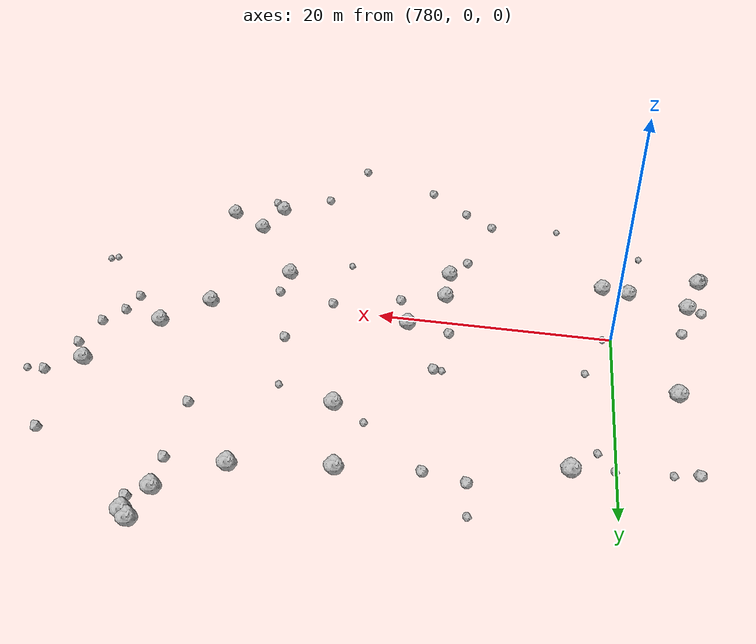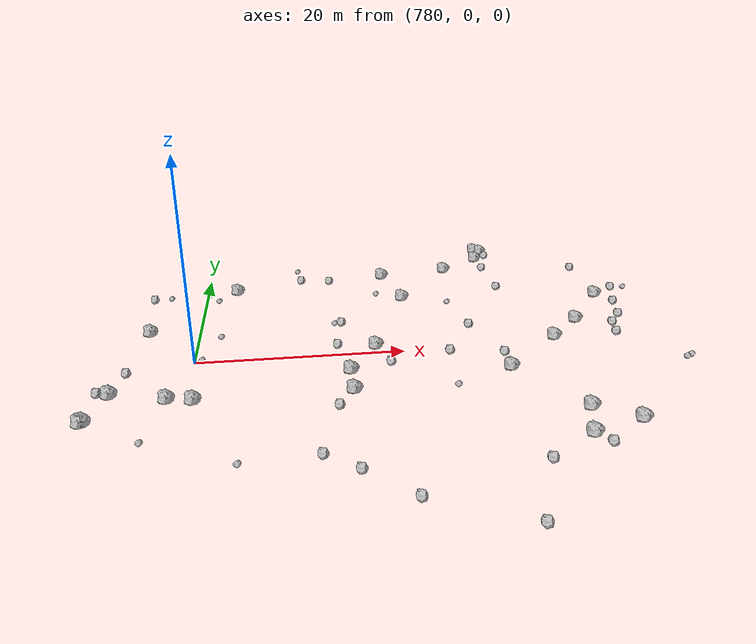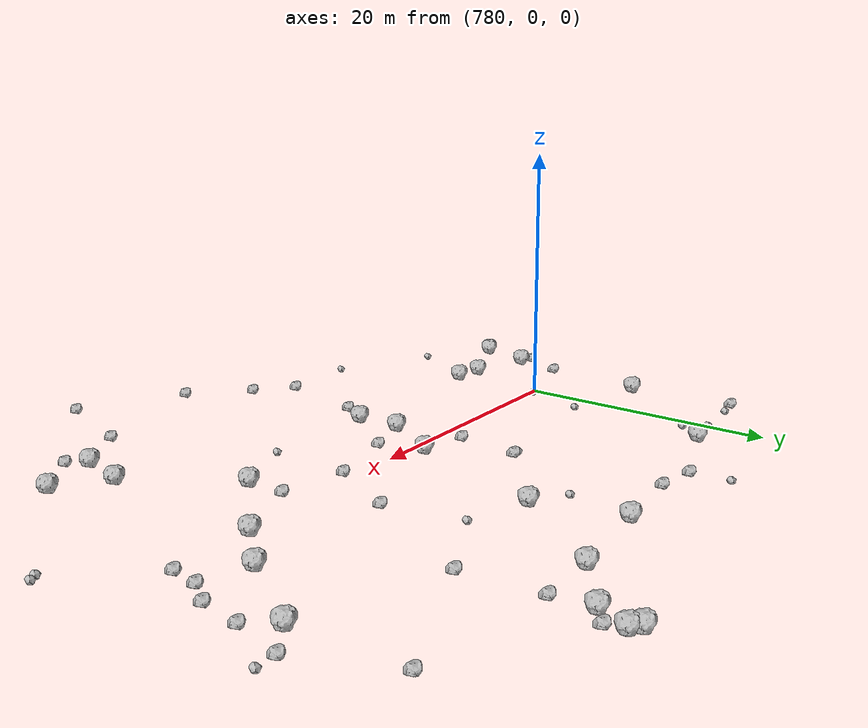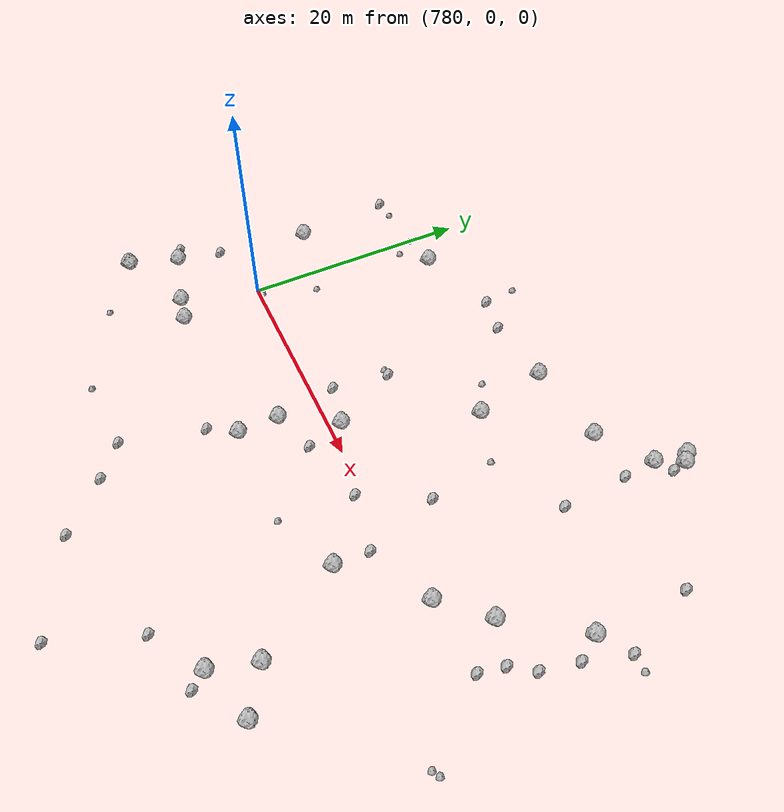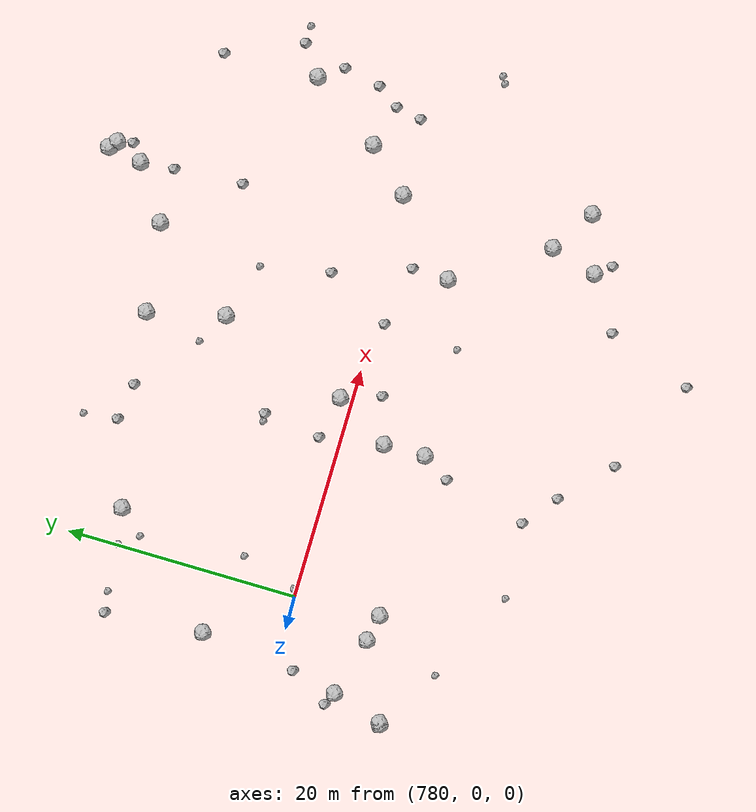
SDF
<sdf version="1.6">
 <world name="default">
  <include><uri>model://sun</uri></include>
  <model name="rock1_20_4">
   <include><uri>model://rock1</uri><pose>780.6277568178024 -7.3130379563730585 0.5 0 0 0</pose></include>
  </model>
  <model name="rock1_20_5">
   <include><uri>model://rock1</uri><pose>783.2465291311591 16.117773333424218 0.5 0 0 0</pose></include>
  </model>
  <model name="rock1_20_6">
   <include><uri>model://rock1</uri><pose>794.6399045044341 -7.1812606985435 0.5 0 0 0</pose></include>
  </model>
  <model name="rock1_20_7">
   <include><uri>model://rock1</uri><pose>778.3364969329497 -6.865766236987117 0.5 0 0 0</pose></include>
  </model>
  <model name="rock1_20_8">
   <include><uri>model://rock1</uri><pose>822.8032411089894 10.517619639294402 0.5 0 0 0</pose></include>
  </model>
  <model name="rock1_20_9">
   <include><uri>model://rock1</uri><pose>775.0714633245273 6.611725322603533 0.5 0 0 0</pose></include>
  </model>
  <model name="rock1_20_10">
   <include><uri>model://rock1</uri><pose>799.7110332769665 18.815611596987587 0.5 0 0 0</pose></include>
  </model>
  <model name="rock1_20_11">
   <include><uri>model://rock1</uri><pose>771.7980946281173 -9.913394235485459 0.5 0 0 0</pose></include>
  </model>
  <model name="rock1_20_12">
   <include><uri>model://rock1</uri><pose>809.4812350757536 -4.840153569661506 0.5 0 0 0</pose></include>
  </model>
  <model name="rock1_20_13">
   <include><uri>model://rock1</uri><pose>818.1994952168606 -14.970622197962895 0.5 0 0 0</pose></include>
  </model>
  <model name="rock1_20_14">
   <include><uri>model://rock1</uri><pose>818.6166908311836 4.403815171181769 0.5 0 0 0</pose></include>
  </model>
  <model name="rock1_20_15">
   <include><uri>model://rock1</uri><pose>814.5320774393739 -12.581781501675252 0.5 0 0 0</pose></include>
  </model>
  <model name="rock1_20_16">
   <include><uri>model://rock1</uri><pose>811.6875371394076 22.859001476568046 0.5 0 0 0</pose></include>
  </model>
  <model name="rock1_20_17">
   <include><uri>model://rock1</uri><pose>807.2648209581573 19.812666523604882 0.5 0 0 0</pose></include>
  </model>
  <model name="rock1_20_18">
   <include><uri>model://rock1</uri><pose>812.1574162077195 25.775414874652654 0.5 0 0 0</pose></include>
  </model>
  <model name="rock1_20_19">
   <include><uri>model://rock1</uri><pose>801.294133989203 12.268346990153361 0.5 0 0 0</pose></include>
  </model>
  <model name="rock1_20_20">
   <include><uri>model://rock1</uri><pose>771.9359233845371 -9.826819753881505 0.5 0 0 0</pose></include>
  </model>
  <model name="rock1_20_21">
   <include><uri>model://rock1</uri><pose>794.5866808949166 -3.5889958989913318 0.5 0 0 0</pose></include>
  </model>
  <model name="rock1_20_22">
   <include><uri>model://rock1</uri><pose>813.4121954279472 -16.557262365777028 0.5 0 0 0</pose></include>
  </model>
  <model name="rock1_20_23">
   <include><uri>model://rock1</uri><pose>797.3382559989772 1.0552206930858965 0.5 0 0 0</pose></include>
  </model>
  <model name="rock1_20_24">
   <include><uri>model://rock1</uri><pose>815.2649033567203 0.8003535376485935 0.5 0 0 0</pose></include>
  </model>
  <model name="rock1_20_25">
   <include><uri>model://rock1</uri><pose>812.8042489056529 25.198802306939207 0.5 0 0 0</pose></include>
  </model>
  <model name="rock1_20_26">
   <include><uri>model://rock1</uri><pose>773.2655125688899 -5.49303268281054 0.5 0 0 0</pose></include>
  </model>
  <model name="rock2_20_0">
   <include><uri>model://rock2</uri><pose>793.5132453202235 18.11263913819404 0.3 0 0 0</pose></include>
  </model>
  <model name="rock2_20_1">
   <include><uri>model://rock2</uri><pose>804.3429635690051 -0.752016159183821 0.3 0 0 0</pose></include>
  </model>
  <model name="rock2_20_2">
   <include><uri>model://rock2</uri><pose>825.2655981646091 12.333009365856036 0.3 0 0 0</pose></include>
  </model>
  <model name="rock2_20_3">
   <include><uri>model://rock2</uri><pose>823.5384867087275 5.32402898846702 0.3 0 0 0</pose></include>
  </model>
  <model name="rock2_20_4">
   <include><uri>model://rock2</uri><pose>798.4335257609737 -2.304748022040034 0.3 0 0 0</pose></include>
  </model>
  <model name="rock2_20_5">
   <include><uri>model://rock2</uri><pose>798.2739209023024 -22.845830781188226 0.3 0 0 0</pose></include>
  </model>
  <model name="rock2_20_6">
   <include><uri>model://rock2</uri><pose>822.5155947892597 18.695946160769765 0.3 0 0 0</pose></include>
  </model>
  <model name="rock2_20_7">
   <include><uri>model://rock2</uri><pose>774.3116337624814 15.076810500826717 0.3 0 0 0</pose></include>
  </model>
  <model name="rock2_20_8">
   <include><uri>model://rock2</uri><pose>813.0851179421846 23.93575951345371 0.3 0 0 0</pose></include>
  </model>
  <model name="rock2_20_9">
   <include><uri>model://rock2</uri><pose>809.5195102947815 -1.716644985625571 0.3 0 0 0</pose></include>
  </model>
  <model name="rock2_20_10">
   <include><uri>model://rock2</uri><pose>806.3802814066584 -26.767272171573687 0.3 0 0 0</pose></include>
  </model>
  <model name="rock2_20_11">
   <include><uri>model://rock2</uri><pose>794.2572878406861 6.8168838795410736 0.3 0 0 0</pose></include>
  </model>
  <model name="rock2_20_12">
   <include><uri>model://rock2</uri><pose>811.9254358235285 19.98909815035924 0.3 0 0 0</pose></include>
  </model>
  <model name="rock2_20_13">
   <include><uri>model://rock2</uri><pose>814.4447637623282 -17.87327884710941 0.3 0 0 0</pose></include>
  </model>
  <model name="rock2_20_14">
   <include><uri>model://rock2</uri><pose>821.810207943014 1.1994726836227585 0.3 0 0 0</pose></include>
  </model>
  <model name="rock2_20_15">
   <include><uri>model://rock2</uri><pose>791.458483669266 -16.671245306538736 0.3 0 0 0</pose></include>
  </model>
  <model name="rock2_20_16">
   <include><uri>model://rock2</uri><pose>774.0454149629481 -1.5797730528751721 0.3 0 0 0</pose></include>
  </model>
  <model name="rock2_20_17">
   <include><uri>model://rock2</uri><pose>794.2826213741943 -18.961854186300116 0.3 0 0 0</pose></include>
  </model>
  <model name="rock2_20_18">
   <include><uri>model://rock2</uri><pose>822.2173520777959 3.4140720849401163 0.3 0 0 0</pose></include>
  </model>
  <model name="rock2_20_19">
   <include><uri>model://rock2</uri><pose>807.2713865193173 4.783373166276618 0.3 0 0 0</pose></include>
  </model>
  <model name="rock2_20_20">
   <include><uri>model://rock2</uri><pose>793.6090367102902 1.8529531830752575 0.3 0 0 0</pose></include>
  </model>
  <model name="rock2_20_21">
   <include><uri>model://rock2</uri><pose>824.1714205016028 8.53293312474785 0.3 0 0 0</pose></include>
  </model>
  <model name="rock2_20_22">
   <include><uri>model://rock2</uri><pose>809.016077385139 -19.435866948761387 0.3 0 0 0</pose></include>
  </model>
  <model name="rock2_20_23">
   <include><uri>model://rock2</uri><pose>790.3181727482888 18.632345244152127 0.3 0 0 0</pose></include>
  </model>
  <model name="rock2_20_24">
   <include><uri>model://rock2</uri><pose>793.17552415444 -9.50944300171485 0.3 0 0 0</pose></include>
  </model>
  <model name="rock2_20_25">
   <include><uri>model://rock2</uri><pose>812.3430104859278 14.078237713670987 0.3 0 0 0</pose></include>
  </model>
  <model name="rock2_20_26">
   <include><uri>model://rock2</uri><pose>772.0896966607775 -4.948836137641425 0.3 0 0 0</pose></include>
  </model>
  <model name="rock3_20_0">
   <include><uri>model://rock3</uri><pose>826.67589462653 -4.828746358531738 0.2 0 0 0</pose></include>
  </model>
  <model name="rock3_20_1">
   <include><uri>model://rock3</uri><pose>782.158540364729 5.053186016194751 0.2 0 0 0</pose></include>
  </model>
  <model name="rock3_20_2">
   <include><uri>model://rock3</uri><pose>776.9988196179062 -13.284820413261148 0.2 0 0 0</pose></include>
  </model>
  <model name="rock3_20_3">
   <include><uri>model://rock3</uri><pose>776.058851700736 15.30645655390942 0.2 0 0 0</pose></include>
  </model>
  <model name="rock3_20_4">
   <include><uri>model://rock3</uri><pose>789.9377665581844 21.519844287162663 0.2 0 0 0</pose></include>
  </model>
  <model name="rock3_20_5">
   <include><uri>model://rock3</uri><pose>784.9013939342935 -17.135740909831746 0.2 0 0 0</pose></include>
  </model>
  <model name="rock3_20_6">
   <include><uri>model://rock3</uri><pose>826.7537220134552 12.287442932380152 0.2 0 0 0</pose></include>
  </model>
  <model name="rock3_20_7">
   <include><uri>model://rock3</uri><pose>780.6853213504004 0.2716700410493935 0.2 0 0 0</pose></include>
  </model>
  <model name="rock3_20_8">
   <include><uri>model://rock3</uri><pose>827.2574604536092 -4.4976911283263945 0.2 0 0 0</pose></include>
  </model>
  <model name="rock3_20_9">
   <include><uri>model://rock3</uri><pose>803.9516171704566 -7.288234050437801 0.2 0 0 0</pose></include>
  </model>
  <model name="rock3_20_10">
   <include><uri>model://rock3</uri><pose>806.045975746199 10.704023066679923 0.2 0 0 0</pose></include>
  </model>
  <model name="rock3_20_11">
   <include><uri>model://rock3</uri><pose>781.2926385626902 14.011327288240906 0.2 0 0 0</pose></include>
  </model>
  <model name="rock3_20_12">
   <include><uri>model://rock3</uri><pose>798.5321496568612 13.827444995505104 0.2 0 0 0</pose></include>
  </model>
  <model name="rock3_20_13">
   <include><uri>model://rock3</uri><pose>793.5597102336818 6.748164428023593 0.2 0 0 0</pose></include>
  </model>
  <model name="rock3_20_14">
   <include><uri>model://rock3</uri><pose>780.1167253186051 15.602458249799703 0.2 0 0 0</pose></include>
  </model>
 </world>
</sdf>
